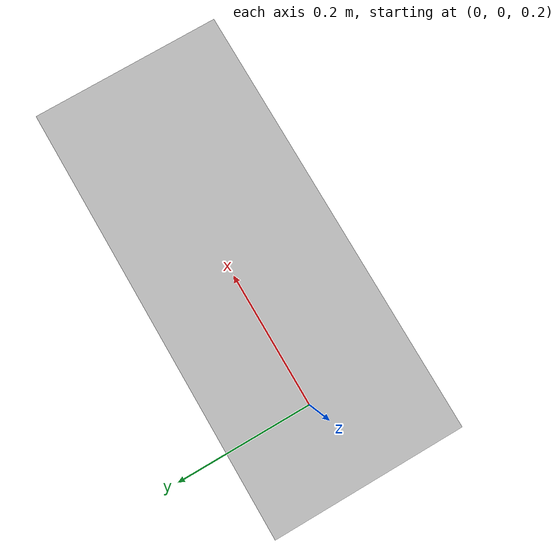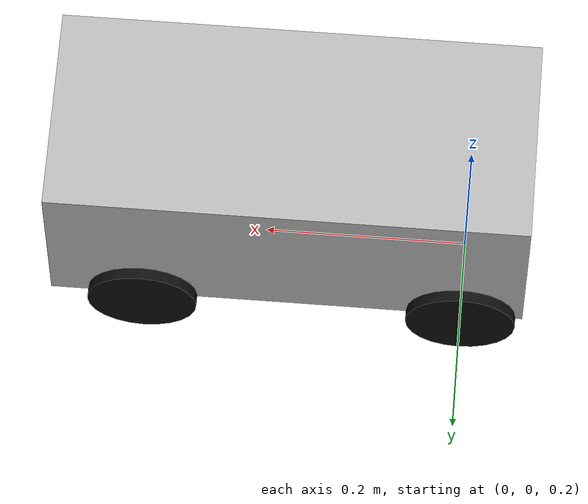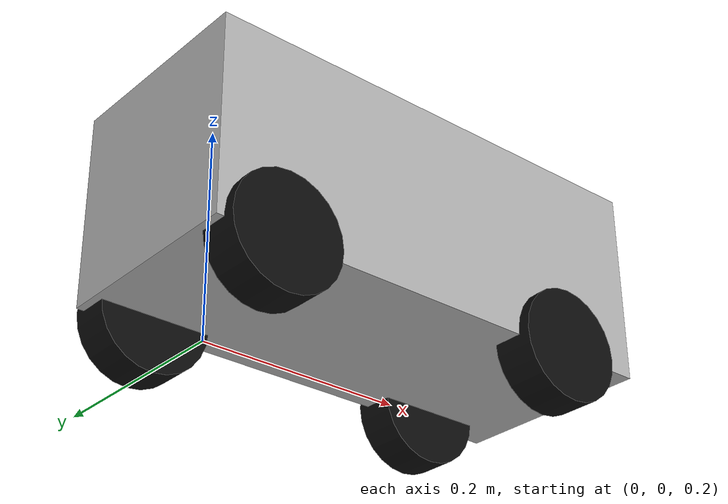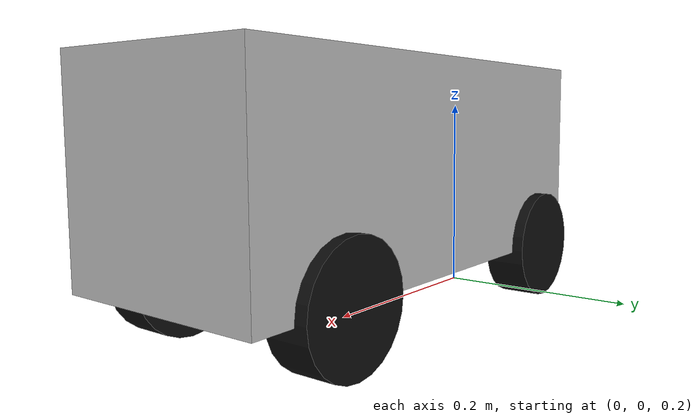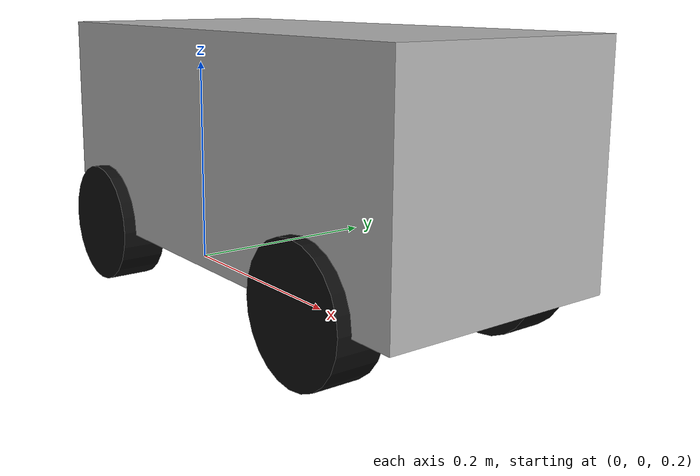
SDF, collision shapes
<?xml version="1.0" ?>
<!-- |    This document was autogenerated by xmacro4sdf from model.sdf.xmacro          | -->
<!-- |    EDITING THIS FILE BY HAND IS NOT RECOMMENDED                                 | -->
<sdf version="1.7">
	<!-- include definition -->
	<!--property definition-->
	<!-- scorpio model -->
	<model name="scorpio">
		<pose>0 0 0.2 0 0 0</pose>
		<link name="base_footprint">
			<inertial>
				<mass>1e-09</mass>
				<inertia>
					<ixx>4.000000000000001e-28</ixx>
					<ixy>0</ixy>
					<ixz>0</ixz>
					<iyy>4.000000000000001e-28</iyy>
					<iyz>0</iyz>
					<izz>4.000000000000001e-28</izz>
				</inertia>
			</inertial>
		</link>
		<joint name="base_to_chassis" type="fixed">
			<pose>0 0 0.04 0 0 0</pose>
			<parent>base_footprint</parent>
			<child>base_link</child>
		</joint>
		<link name="base_link">
			<inertial>
				<pose>0.1725 0 0.145 0 0 0</pose>
				<mass>5.0</mass>
				<inertia>
					<ixx>0.032212083333333336</ixx>
					<ixy>0</ixy>
					<ixz>0</ixz>
					<iyy>0.10591208333333335</iyy>
					<iyz>0</iyz>
					<izz>0.10804083333333335</izz>
				</inertia>
			</inertial>
			<visual name="base_visual">
				<pose>0.1575 0 0 0 0 0</pose>
				<geometry>
					<mesh>
						<uri>model://scorpio/meshes/scorpio.stl</uri>
					</mesh>
				</geometry>
				<material>
					<ambient>0.5 0.5 0.5</ambient>
					<diffuse>0.7 0.7 0.7</diffuse>
					<specular>0.9 0.9 0.9</specular>
					<pbr>
						<metal>
							<albedo_map>model://scorpio/meshes/images/base.png</albedo_map>
						</metal>
					</pbr>
				</material>
			</visual>
			<collision name="base_collision">
				<pose>0.1725 0 0.145 0 0 0</pose>
				<geometry>
					<box>
						<size>0.467 0.203 0.19</size>
					</box>
				</geometry>
			</collision>
			<sensor name="base_imu" type="imu">
				<always_on>1</always_on>
				<update_rate>200</update_rate>
			</sensor>
		</link>
		<joint name="rear_left_wheel_joint" type="revolute">
			<pose relative_to="base_link">0.0 0.0928 0.0525 0 0 0</pose>
			<parent>base_link</parent>
			<child>rear_left_wheel</child>
			<axis>
				<xyz>0 1 0</xyz>
				<limit>
					<lower>-1.79769e+308</lower>
					<upper>1.79769e+308</upper>
					<effort>1e+10</effort>
					<velocity>1e+10</velocity>
				</limit>
			</axis>
			<dynamics damping="0.2"/>
		</joint>
		<link name="rear_left_wheel">
			<pose relative_to="rear_left_wheel_joint">0 0 0 0 0 0</pose>
			<inertial>
				<pose>0 0 0 1.5707963267948966 0 0</pose>
				<mass>0.2</mass>
				<inertia>
					<ixx>0.0001724666666666667</ixx>
					<ixy>0</ixy>
					<ixz>0</ixz>
					<iyy>0.0001724666666666667</iyy>
					<iyz>0</iyz>
					<izz>0.0002916</izz>
				</inertia>
			</inertial>
			<visual name="rear_left_wheel_visual">
				<geometry>
					<mesh>
						<uri>model://scorpio/meshes/left_wheel.stl</uri>
					</mesh>
				</geometry>
				<material>
					<ambient>0.1 0.1 0.1</ambient>
					<diffuse>0.05 0.05 0.05</diffuse>
					<specular>0.6 0.6 0.6</specular>
				</material>
			</visual>
			<collision name="rear_left_wheel_collision">
				<pose>0 0 0 1.5707963267948966 0 0</pose>
				<geometry>
					<cylinder>
						<radius>0.054</radius>
						<length>0.04</length>
					</cylinder>
				</geometry>
			</collision>
		</link>
		<joint name="rear_right_wheel_joint" type="revolute">
			<pose relative_to="base_link">0.0 -0.0928 0.0525 0 0 0</pose>
			<parent>base_link</parent>
			<child>rear_right_wheel</child>
			<axis>
				<xyz>0 1 0</xyz>
				<limit>
					<lower>-1.79769e+308</lower>
					<upper>1.79769e+308</upper>
					<effort>1e+10</effort>
					<velocity>1e+10</velocity>
				</limit>
			</axis>
			<dynamics damping="0.2"/>
		</joint>
		<link name="rear_right_wheel">
			<pose relative_to="rear_right_wheel_joint">0 0 0 0 0 0</pose>
			<inertial>
				<pose>0 0 0 1.5707963267948966 0 0</pose>
				<mass>0.2</mass>
				<inertia>
					<ixx>0.0001724666666666667</ixx>
					<ixy>0</ixy>
					<ixz>0</ixz>
					<iyy>0.0001724666666666667</iyy>
					<iyz>0</iyz>
					<izz>0.0002916</izz>
				</inertia>
			</inertial>
			<visual name="rear_right_wheel_visual">
				<geometry>
					<mesh>
						<uri>model://scorpio/meshes/right_wheel.stl</uri>
					</mesh>
				</geometry>
				<material>
					<ambient>0.1 0.1 0.1</ambient>
					<diffuse>0.05 0.05 0.05</diffuse>
					<specular>0.6 0.6 0.6</specular>
				</material>
			</visual>
			<collision name="rear_right_wheel_collision">
				<pose>0 0 0 1.5707963267948966 0 0</pose>
				<geometry>
					<cylinder>
						<radius>0.054</radius>
						<length>0.04</length>
					</cylinder>
				</geometry>
			</collision>
		</link>
		<joint name="front_left_steering_joint" type="revolute">
			<pose relative_to="base_link">0.315 0.0928 0.0525 0 0 0</pose>
			<parent>base_link</parent>
			<child>front_left_steering_link</child>
			<axis>
				<xyz>0 0 1</xyz>
				<limit>
					<lower>-0.5235987755982988</lower>
					<upper>0.5235987755982988</upper>
					<effort>1000</effort>
					<velocity>10</velocity>
				</limit>
			</axis>
			<dynamics damping="0.2"/>
		</joint>
		<link name="front_left_steering_link">
			<pose relative_to="front_left_steering_joint">0 0 0 0 0 0</pose>
			<inertial>
				<mass>1e-09</mass>
				<inertia>
					<ixx>4.000000000000001e-28</ixx>
					<ixy>0</ixy>
					<ixz>0</ixz>
					<iyy>4.000000000000001e-28</iyy>
					<iyz>0</iyz>
					<izz>4.000000000000001e-28</izz>
				</inertia>
			</inertial>
		</link>
		<joint name="front_left_wheel_joint" type="revolute">
			<pose relative_to="front_left_steering_link">0 0 0 0 0 0</pose>
			<parent>front_left_steering_link</parent>
			<child>front_left_wheel</child>
			<axis>
				<xyz>0 1 0</xyz>
				<limit>
					<lower>-1.79769e+308</lower>
					<upper>1.79769e+308</upper>
					<effort>1e+10</effort>
					<velocity>1e+10</velocity>
				</limit>
			</axis>
			<dynamics damping="0.2"/>
		</joint>
		<link name="front_left_wheel">
			<pose relative_to="front_left_wheel_joint">0 0 0 0 0 0</pose>
			<inertial>
				<pose>0 0 0 1.5707963267948966 0 0</pose>
				<mass>0.2</mass>
				<inertia>
					<ixx>0.0001724666666666667</ixx>
					<ixy>0</ixy>
					<ixz>0</ixz>
					<iyy>0.0001724666666666667</iyy>
					<iyz>0</iyz>
					<izz>0.0002916</izz>
				</inertia>
			</inertial>
			<visual name="front_left_wheel_visual">
				<geometry>
					<mesh>
						<uri>model://scorpio/meshes/left_wheel.stl</uri>
					</mesh>
				</geometry>
				<material>
					<ambient>0.1 0.1 0.1</ambient>
					<diffuse>0.05 0.05 0.05</diffuse>
					<specular>0.6 0.6 0.6</specular>
				</material>
			</visual>
			<collision name="front_left_wheel_collision">
				<pose>0 0 0 1.5707963267948966 0 0</pose>
				<geometry>
					<cylinder>
						<radius>0.054</radius>
						<length>0.04</length>
					</cylinder>
				</geometry>
			</collision>
		</link>
		<joint name="front_right_steering_joint" type="revolute">
			<pose relative_to="base_link">0.315 -0.0928 0.0525 0 0 0</pose>
			<parent>base_link</parent>
			<child>front_right_steering_link</child>
			<axis>
				<xyz>0 0 1</xyz>
				<limit>
					<lower>-0.5235987755982988</lower>
					<upper>0.5235987755982988</upper>
					<effort>1000</effort>
					<velocity>10</velocity>
				</limit>
			</axis>
			<dynamics damping="0.2"/>
		</joint>
		<link name="front_right_steering_link">
			<pose relative_to="front_right_steering_joint">0 0 0 0 0 0</pose>
			<inertial>
				<mass>1e-09</mass>
				<inertia>
					<ixx>4.000000000000001e-28</ixx>
					<ixy>0</ixy>
					<ixz>0</ixz>
					<iyy>4.000000000000001e-28</iyy>
					<iyz>0</iyz>
					<izz>4.000000000000001e-28</izz>
				</inertia>
			</inertial>
		</link>
		<joint name="front_right_wheel_joint" type="revolute">
			<pose relative_to="front_right_steering_link">0 0 0 0 0 0</pose>
			<parent>front_right_steering_link</parent>
			<child>front_right_wheel</child>
			<axis>
				<xyz>0 1 0</xyz>
				<limit>
					<lower>-1.79769e+308</lower>
					<upper>1.79769e+308</upper>
					<effort>1e+10</effort>
					<velocity>1e+10</velocity>
				</limit>
			</axis>
			<dynamics damping="0.2"/>
		</joint>
		<link name="front_right_wheel">
			<pose relative_to="front_right_wheel_joint">0 0 0 0 0 0</pose>
			<inertial>
				<pose>0 0 0 1.5707963267948966 0 0</pose>
				<mass>0.2</mass>
				<inertia>
					<ixx>0.0001724666666666667</ixx>
					<ixy>0</ixy>
					<ixz>0</ixz>
					<iyy>0.0001724666666666667</iyy>
					<iyz>0</iyz>
					<izz>0.0002916</izz>
				</inertia>
			</inertial>
			<visual name="front_right_wheel_visual">
				<geometry>
					<mesh>
						<uri>model://scorpio/meshes/right_wheel.stl</uri>
					</mesh>
				</geometry>
				<material>
					<ambient>0.1 0.1 0.1</ambient>
					<diffuse>0.05 0.05 0.05</diffuse>
					<specular>0.6 0.6 0.6</specular>
				</material>
			</visual>
			<collision name="front_right_wheel_collision">
				<pose>0 0 0 1.5707963267948966 0 0</pose>
				<geometry>
					<cylinder>
						<radius>0.054</radius>
						<length>0.04</length>
					</cylinder>
				</geometry>
			</collision>
		</link>
		<plugin filename="ignition-gazebo-joint-state-publisher-system" name="ignition::gazebo::systems::JointStatePublisher">
    </plugin>
		<plugin filename="ignition-gazebo-ackermann-steering-system" name="ignition::gazebo::systems::AckermannSteering">
			<left_joint>front_left_wheel_joint</left_joint>
			<left_joint>rear_left_wheel_joint</left_joint>
			<right_joint>front_right_wheel_joint</right_joint>
			<right_joint>rear_right_wheel_joint</right_joint>
			<left_steering_joint>front_left_steering_joint</left_steering_joint>
			<right_steering_joint>front_right_steering_joint</right_steering_joint>
			<wheel_separation>0.1856</wheel_separation>
			<kingpin_width>0.1856</kingpin_width>
			<wheel_base>0.315</wheel_base>
			<wheel_radius>0.052</wheel_radius>
			<steering_limit>0.7853981633974483</steering_limit>
			<min_velocity>-2.0</min_velocity>
			<max_velocity>2.0</max_velocity>
			<min_acceleration>-6.0</min_acceleration>
			<max_acceleration>6.0</max_acceleration>
			<frame_id>odom</frame_id>
			<child_frame_id>base_link</child_frame_id>
			<odom_publish_frequency>20</odom_publish_frequency>
		</plugin>
	</model>
</sdf>
